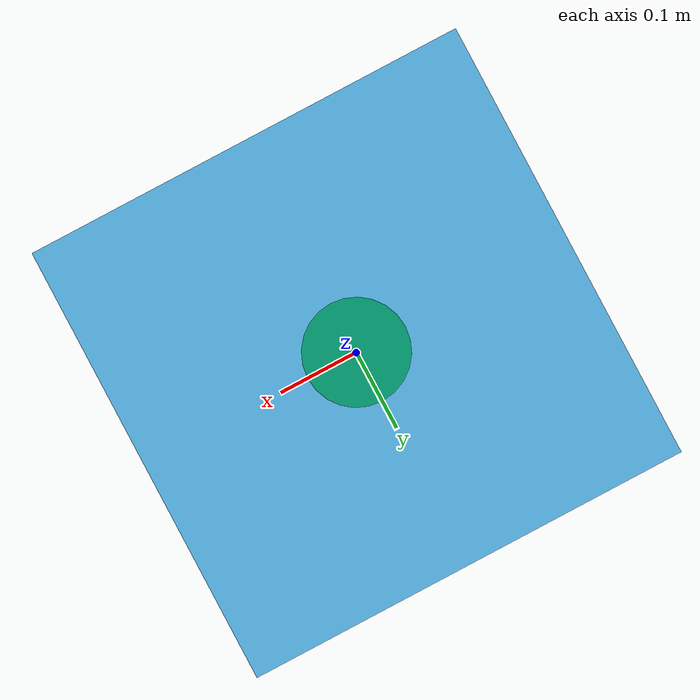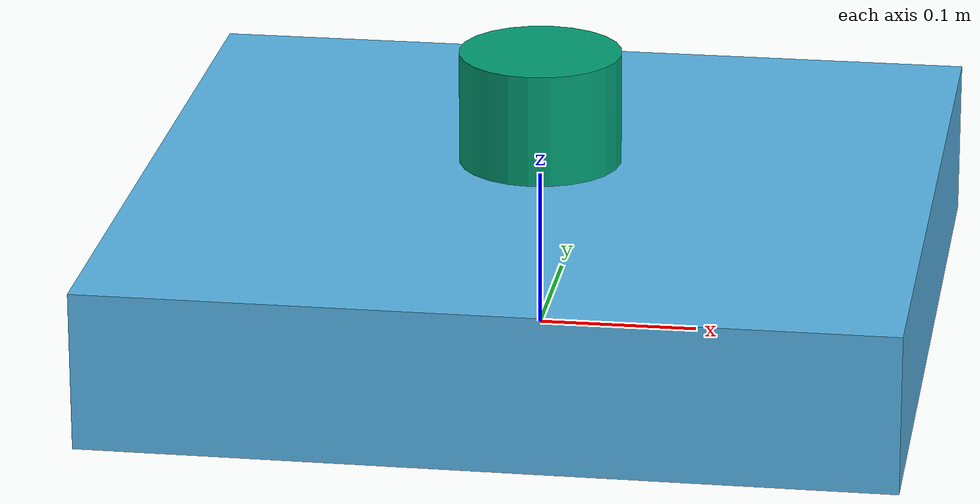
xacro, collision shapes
<?xml version="1.0"?>
<robot xmlns:xacro="http://www.ros.org/wiki/xacro" name="example">
  <xacro:arg name="gpu" default="false"/>
  <xacro:property name="gpu" value="$(arg gpu)" />
  <xacro:arg name="organize_cloud" default="false"/>
  <xacro:property name="organize_cloud" value="$(arg organize_cloud)" />

  <!-- Base Footprint -->
  <link name="base_footprint" />

  <!-- Base Link -->
  <joint name="footprint" type="fixed" >
   <parent link="base_footprint" />
    <child link="base_link" />
    <origin xyz="0 0 0.05" rpy="0 0 0" />
  </joint>
  <link name="base_link" >
    <visual>
      <geometry>
        <box size="0.5 0.5 0.1" />
      </geometry>
    </visual>
    <collision>
      <geometry>
        <box size="0.5 0.5 0.1" />
      </geometry>
    </collision>
    <inertial>
      <origin xyz="0 0 0"/>
      <mass value="10"/>
      <inertia ixx="3.0" ixy="0.0" ixz="0.0"
               iyy="3.0" iyz="0.0"
               izz="3.0" />
    </inertial>
  </link>

  <xacro:include filename="$(find velodyne_description)/urdf/VLP-16.urdf.xacro"/>
  <xacro:VLP-16 parent="base_link" name="velodyne" topic="/velodyne_points" organize_cloud="${organize_cloud}" hz="10" samples="440" gpu="${gpu}">
    <origin xyz="0 0 0.06" rpy="0 0 0" />
  </xacro:VLP-16>

</robot>

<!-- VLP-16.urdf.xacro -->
<robot xmlns:xacro="http://www.ros.org/wiki/xacro" name="VLP-16">
  <xacro:property name="M_PI" value="3.1415926535897931" />
  <xacro:macro name="VLP-16" params="*origin parent:=base_link name:=velodyne topic:=/velodyne_points organize_cloud:=false hz:=10 lasers:=16 samples:=1875 collision_range:=0.3 min_range:=0.3 max_range:=10.0 noise:=0.008 min_angle:=-${M_PI} max_angle:=${M_PI} gpu:=false">
    <joint name="${name}_base_mount_joint" type="fixed">
      <xacro:insert_block name="origin" />
      <parent link="${parent}"/>
      <child link="${name}_base_link"/>
    </joint>

    <link name="${name}_base_link">
      <inertial>
        <mass value="0.00000000001"/>
        <origin xyz="0 0 0.03585"/>
        <inertia ixx="${(0.00000000001 * (3.0*0.0516*0.0516 + 0.0717*0.0717)) / 12.0}" ixy="0" ixz="0"
          iyy="${(0.00000000001 * (3.0*0.0516*0.0516 + 0.0717*0.0717)) / 12.0}" iyz="0"
          izz="${0.5 * 0.00000000001 * (0.0516*0.0516)}"/>
      </inertial>
      <visual>
        <geometry>
          <mesh filename="package://velodyne_description/meshes/VLP16_base_1.dae" />
        </geometry>
      </visual>
      <visual>
        <geometry>
          <mesh filename="package://velodyne_description/meshes/VLP16_base_2.dae" />
        </geometry>
      </visual>
      <collision>
        <origin rpy="0 0 0" xyz="0 0 0.03585"/>
        <geometry>
          <cylinder radius="0.0516" length="0.0717"/>
        </geometry>
      </collision>
    </link>

    <joint name="${name}_base_scan_joint" type="fixed" >
      <origin xyz="0 0 0.0377" rpy="0 0 0" />
      <parent link="${name}_base_link" />
      <child link="${name}"/>
    </joint>

    <link name="${name}">
      <inertial>
        <mass value="0.00000000001"/>
        <origin xyz="0 0 0"/>
        <inertia ixx="1e-7" ixy="0" ixz="0" iyy="1e-7" iyz="0" izz="1e-7"/>
      </inertial>
      <visual>
        <origin xyz="0 0 -0.0377" />
        <geometry>
          <mesh filename="package://velodyne_description/meshes/VLP16_scan.dae" />
        </geometry>
      </visual>
      <collision>
        <geometry>
          <sphere radius="0"/>
        </geometry>
      </collision>
    </link>

    <!-- Gazebo requires the velodyne_gazebo_plugins package -->
    <gazebo reference="${name}">
      <xacro:if value="${gpu}">
        <sensor type="gpu_ray" name="${name}-VLP16">
          <pose>0 0 0 0 0 0</pose>
          <visualize>false</visualize>
          <update_rate>${hz}</update_rate>
          <ray>
            <scan>
              <horizontal>
                <samples>${samples}</samples>
                <resolution>1</resolution>
                <min_angle>${min_angle}</min_angle>
                <max_angle>${max_angle}</max_angle>
              </horizontal>
              <vertical>
                <samples>${lasers}</samples>
                <resolution>1</resolution>
                <min_angle>-${15.0*M_PI/180.0}</min_angle>
                <max_angle> ${15.0*M_PI/180.0}</max_angle>
              </vertical>
            </scan>
            <range>
              <min>${collision_range}</min>
              <max>${max_range+1}</max>
              <resolution>0.001</resolution>
            </range>
            <noise>
              <type>gaussian</type>
              <mean>0.0</mean>
              <stddev>0.0</stddev>
            </noise>
          </ray>
          <plugin name="gazebo_ros_laser_controller" filename="libgazebo_ros_velodyne_gpu_laser.so">
            <topicName>${topic}</topicName>
            <frameName>${name}</frameName>
            <organize_cloud>${organize_cloud}</organize_cloud>
            <min_range>${min_range}</min_range>
            <max_range>${max_range}</max_range>
            <gaussianNoise>${noise}</gaussianNoise>
          </plugin>
        </sensor>
      </xacro:if>
      <xacro:unless value="${gpu}">
        <sensor type="ray" name="${name}-VLP16">
          <pose>0 0 0 0 0 0</pose>
          <visualize>false</visualize>
          <update_rate>${hz}</update_rate>
          <ray>
            <scan>
              <horizontal>
                <samples>${samples}</samples>
                <resolution>1</resolution>
                <min_angle>${min_angle}</min_angle>
                <max_angle>${max_angle}</max_angle>
              </horizontal>
              <vertical>
                <samples>${lasers}</samples>
                <resolution>1</resolution>
                <min_angle>-${15.0*M_PI/180.0}</min_angle>
                <max_angle> ${15.0*M_PI/180.0}</max_angle>
              </vertical>
            </scan>
            <range>
              <min>${collision_range}</min>
              <max>${max_range+1}</max>
              <resolution>0.001</resolution>
            </range>
            <noise>
              <type>gaussian</type>
              <mean>0.0</mean>
              <stddev>0.0</stddev>
            </noise>
          </ray>
          <plugin name="gazebo_ros_laser_controller" filename="libgazebo_ros_velodyne_laser.so">
            <topicName>${topic}</topicName>
            <frameName>${name}</frameName>
            <organize_cloud>${organize_cloud}</organize_cloud>
            <min_range>${min_range}</min_range>
            <max_range>${max_range}</max_range>
            <gaussianNoise>${noise}</gaussianNoise>
          </plugin>
        </sensor>
      </xacro:unless>
    </gazebo>

  </xacro:macro>
</robot>
